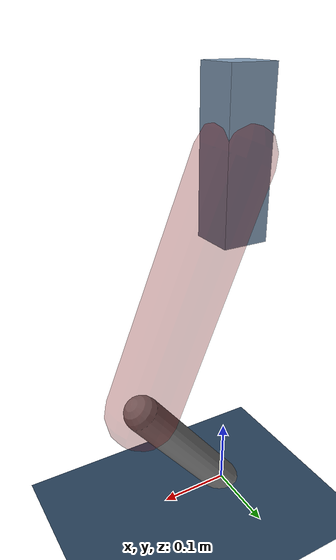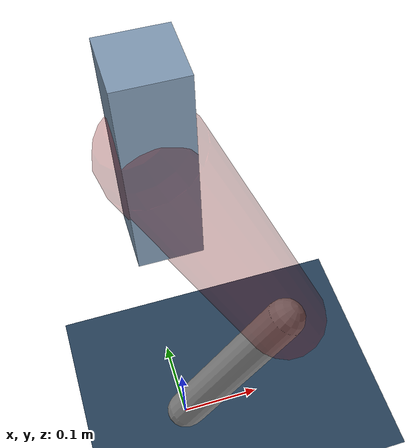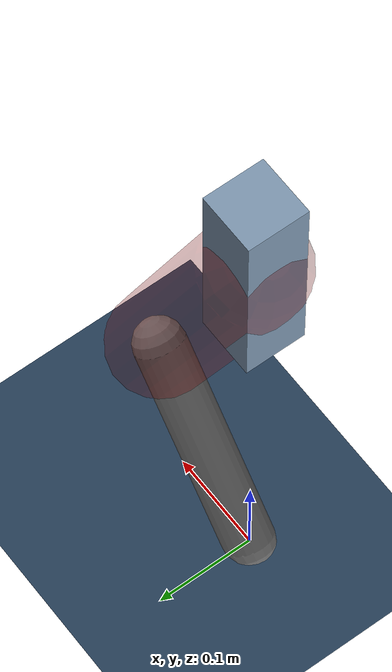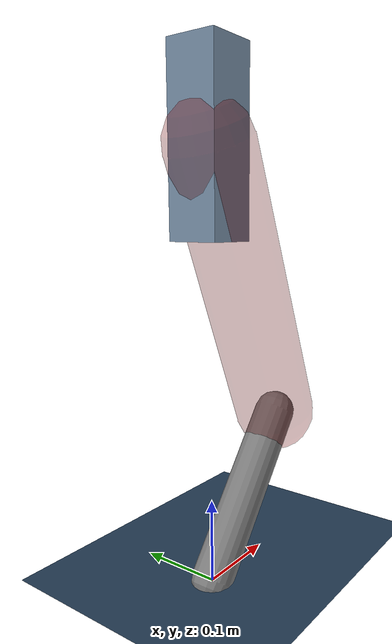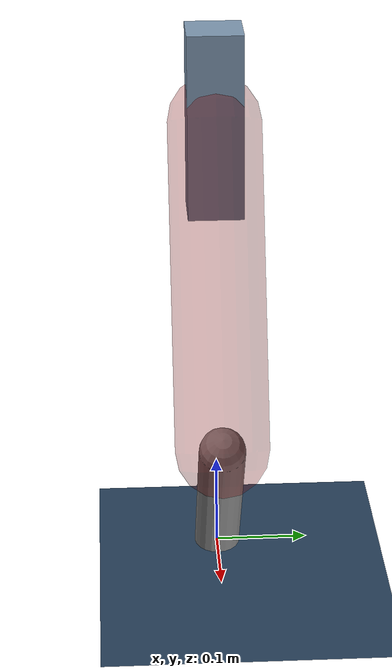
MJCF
<mujoco model="Hopper2D">
	<compiler inertiafromgeom="true" angle="radian" />
	<option timestep="0.001" integrator="implicit" cone="elliptic" solver="Newton" tolerance="1e-10" />

	<default>
		<geom contype="1" conaffinity="1" condim="3" friction="2 0.005 0.0001" solref="0.005 1" />
		<joint limited="true" damping="0.1" />
	</default>

	<asset>
		<texture name="skybox" type="skybox" builtin="gradient" rgb1=".4 .6 .8" rgb2="0 0 0" width="800" height="800" />
		<texture name="grid" type="2d" builtin="checker" rgb1=".1 .2 .3" rgb2=".2 .3 .4" width="300" height="300" mark="edge" markrgb=".2 .3 .4" />
		<material name="ground" texture="grid" texrepeat="1 1" texuniform="true" reflectance="0.1" />
		<material name="leg" rgba="0.5 0.6 0.7 1" />
	</asset>

	<worldbody>

		<geom name="floor" type="plane" size="5 5 0.25" material="ground" />

		<light directional="false" diffuse="0.8 0.8 0.8" specular="0.3 0.3 0.3" pos="0 0 2" dir="0 0 -1" />
		<light mode="targetbodycom" target="base" directional="false" diffuse="0.8 0.8 0.8" specular="0.3 0.3 0.3" pos="0 0 2" dir="0 0 -1" />

		<camera name="fixed" pos="0 -2 1" xyaxes="1 0 0 0 0 1" />
		<camera name="tracking" mode="trackcom" pos="0 -3 1" />

		<body name="root" pos="0 0 0.4956754695551574">
			<joint name="slide_x" type="slide" axis="1 0 0" range="-100 100" />
			<joint name="slide_z" type="slide" axis="0 0 1" range="0 10" />

			<body name="base" pos="0 0 0">
				<geom name="torso" type="box" size="0.03 0.03 0.1" mass="2.747" material="leg" />

				<body name="link1" pos="0 0 0" euler="0 1.1753351187327041 0">
					<joint type="hinge" axis="0 -1 0" pos="0 0 0" name="hinge1" limited="true" range="-3.14 3.14" stiffness="0" damping="0.1" />
					<geom name="thigh" type="capsule" fromto="0 0 0 0.3466452843391795 0 0" size="0.05" rgba="0.5 0 0 0.3" mass="1.1172713245836208" />

					<body name="link2" pos="0.3466452843391795 0 0" euler="0 1.0451267501077446 0">
						<joint type="hinge" axis="0 -1 0" pos="0 0 0" name="hinge2" limited="true" range="-3.14 3.14" stiffness="0" damping="0.1" />
						<geom name="shank" type="capsule" fromto="0 0 0 0.22075558586597555 0 0" size="0.025" mass="0.41830446869278043" />

					</body>
				</body>
			</body>
		</body>
	</worldbody>

	<actuator>
		<motor name="torque1" joint="hinge1" ctrlrange="-134.70493789120772 134.70493789120772" ctrllimited="true" gear="1" />
		<motor name="torque2" joint="hinge2" ctrlrange="-110.16942390332424 110.16942390332424" ctrllimited="true" gear="1" />
	</actuator>
</mujoco>
